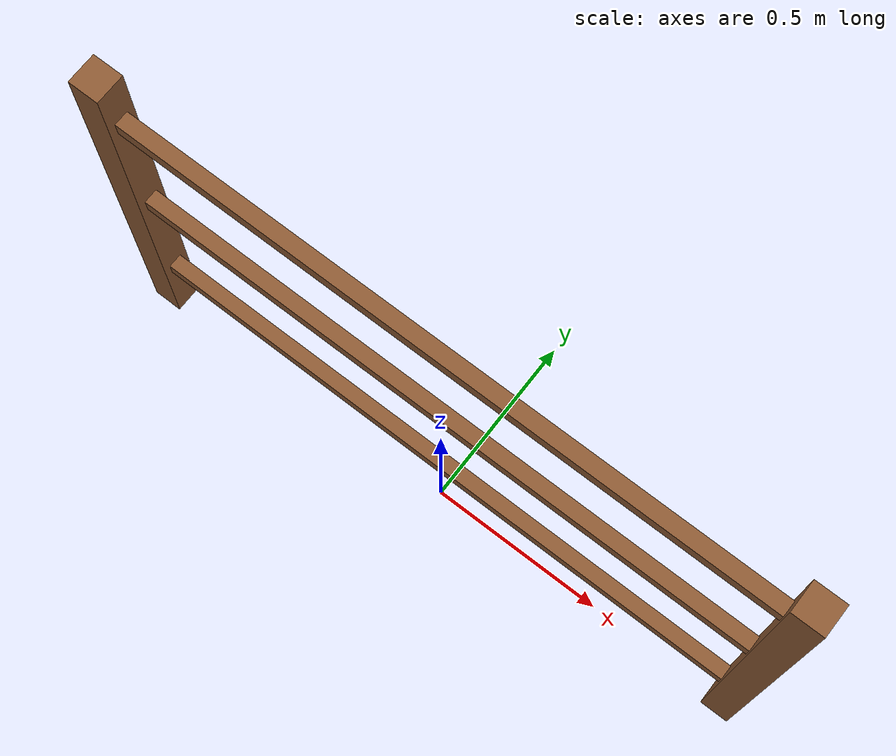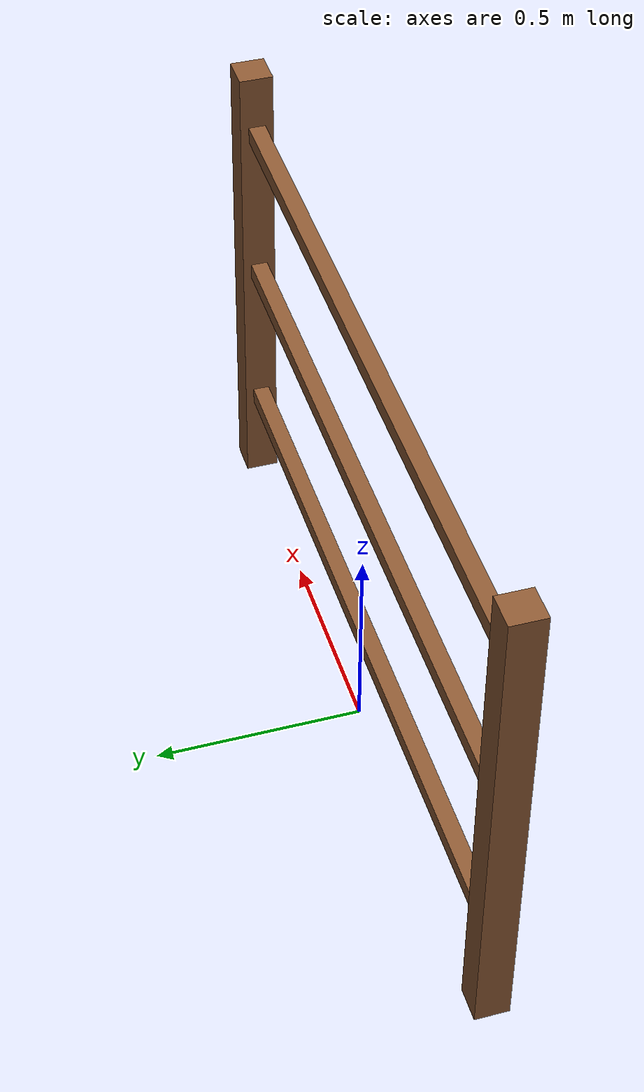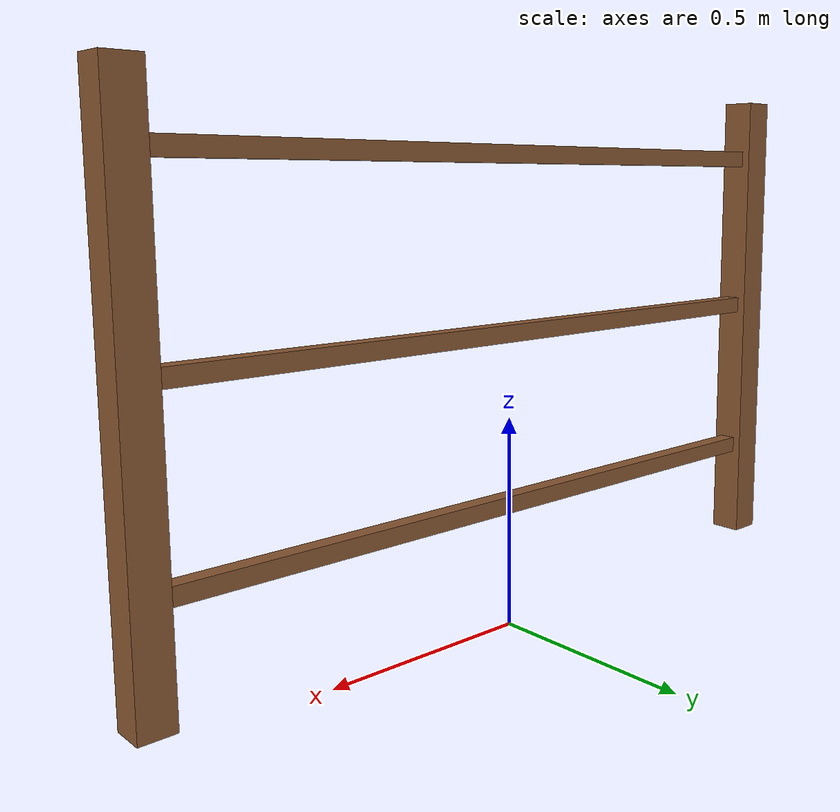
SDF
<?xml version="1.0"?>
<sdf version="1.7">
  <model name="farm_fence">
    <!-- A single fence segment with posts and rails. -->
    <link name="fence_segment">
      <pose>0 0 0.70 0 0 0</pose>
      <inertial>
        <mass>5.0</mass>
        <inertia>
          <ixx>0.10</ixx>
          <iyy>0.10</iyy>
          <izz>0.05</izz>
          <ixy>0.0</ixy>
          <ixz>0.0</ixz>
          <iyz>0.0</iyz>
        </inertia>
      </inertial>

      <collision name="segment_collision">
        <geometry>
          <box>
            <size>2.0 0.10 1.40</size>
          </box>
        </geometry>
      </collision>

      <!-- Left post. -->
      <visual name="post_left_visual">
        <pose>-0.90 0 -0.05 0 0 0</pose>
        <geometry>
          <box>
            <size>0.08 0.08 1.20</size>
          </box>
        </geometry>
        <material>
          <ambient>0.45 0.30 0.15 1.0</ambient>
          <diffuse>0.55 0.35 0.20 1.0</diffuse>
          <specular>0.15 0.15 0.15 1.0</specular>
        </material>
      </visual>

      <!-- Right post. -->
      <visual name="post_right_visual">
        <pose>0.90 0 -0.05 0 0 0</pose>
        <geometry>
          <box>
            <size>0.08 0.08 1.20</size>
          </box>
        </geometry>
        <material>
          <ambient>0.45 0.30 0.15 1.0</ambient>
          <diffuse>0.55 0.35 0.20 1.0</diffuse>
          <specular>0.15 0.15 0.15 1.0</specular>
        </material>
      </visual>

      <!-- Top rail. -->
      <visual name="rail_top_visual">
        <pose>0 0 0.40 0 0 0</pose>
        <geometry>
          <box>
            <size>1.80 0.04 0.04</size>
          </box>
        </geometry>
        <material>
          <ambient>0.45 0.30 0.15 1.0</ambient>
          <diffuse>0.55 0.35 0.20 1.0</diffuse>
          <specular>0.15 0.15 0.15 1.0</specular>
        </material>
      </visual>

      <!-- Middle rail. -->
      <visual name="rail_middle_visual">
        <pose>0 0 0.00 0 0 0</pose>
        <geometry>
          <box>
            <size>1.80 0.04 0.04</size>
          </box>
        </geometry>
        <material>
          <ambient>0.45 0.30 0.15 1.0</ambient>
          <diffuse>0.55 0.35 0.20 1.0</diffuse>
          <specular>0.15 0.15 0.15 1.0</specular>
        </material>
      </visual>

      <!-- Bottom rail. -->
      <visual name="rail_bottom_visual">
        <pose>0 0 -0.40 0 0 0</pose>
        <geometry>
          <box>
            <size>1.80 0.04 0.04</size>
          </box>
        </geometry>
        <material>
          <ambient>0.45 0.30 0.15 1.0</ambient>
          <diffuse>0.55 0.35 0.20 1.0</diffuse>
          <specular>0.15 0.15 0.15 1.0</specular>
        </material>
      </visual>
    </link>
  </model>
</sdf>
